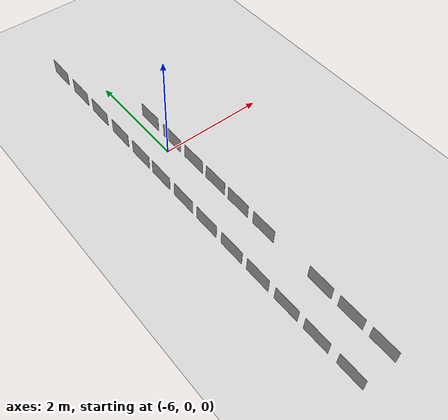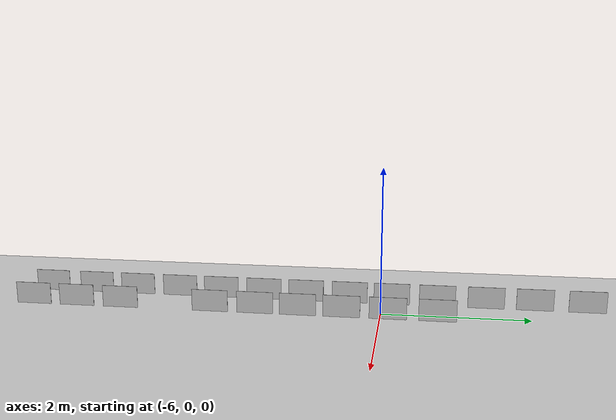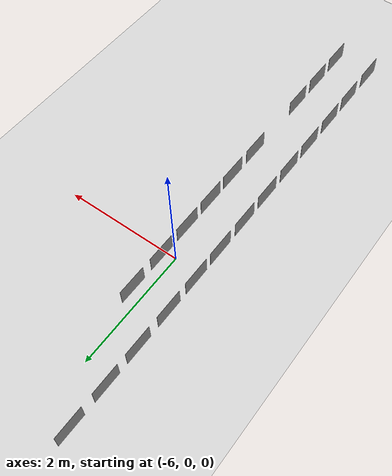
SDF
<sdf version="1.7">
 <world name="default">
  <model name="ground_plane">
   <static>1</static>
   <link name="link">
    <collision name="collision">
     <geometry><plane><normal>0 0 1</normal><size>100 100</size></plane></geometry>
     <surface>
      <contact><collide_bitmask>65535</collide_bitmask></contact>
      <friction><ode><mu>100</mu><mu2>50</mu2></ode></friction>
     </surface>
    </collision>
    <visual name="visual">
     <cast_shadows>0</cast_shadows>
     <geometry><plane><normal>0 0 1</normal><size>100 100</size></plane></geometry>
     <material>
      <script><uri>file://media/materials/scripts/gazebo.material</uri><name>Gazebo/Grey</name></script>
     </material>
    </visual>
   </link>
  </model>
  <model name="kongbufenzi_1">
   <link name="link_0">
    <inertial>
     <mass>1</mass>
     <inertia>
      <ixx>0.166667</ixx>
      <ixy>0</ixy>
      <ixz>0</ixz>
      <iyy>0.166667</iyy>
      <iyz>0</iyz>
      <izz>0.166667</izz>
     </inertia>
    </inertial>
    <visual name="visual">
     <geometry><box><size>0.005 0.5 0.3</size></box></geometry>
     <material>
      <lighting>1</lighting>
      <script><uri>file://media/materials/scripts/gazebo.material</uri><name>Gazebo/kongbufenzi_1</name></script>
      <shader type="pixel"><normal_map>__default__</normal_map></shader>
      <ambient>0.3 0.3 0.3 1</ambient>
      <diffuse>0.7 0.7 0.7 1</diffuse>
      <specular>0.01 0.01 0.01 1</specular>
      <emissive>0 0 0 1</emissive>
     </material>
    </visual>
    <collision name="collision">
     <geometry><box><size>0.005 0.5 0.3</size></box></geometry>
     <surface>
      <friction>
       <ode><mu>1</mu><mu2>1</mu2><fdir1>0 0 0</fdir1><slip1>0</slip1><slip2>0</slip2></ode>
       <torsional>
        <coefficient>1</coefficient>
        <patch_radius>0</patch_radius>
        <surface_radius>0</surface_radius>
        <use_patch_radius>1</use_patch_radius>
        <ode><slip>0</slip></ode>
       </torsional>
      </friction>
      <bounce><restitution_coefficient>0</restitution_coefficient><threshold>1e+06</threshold></bounce>
      <contact>
       <collide_without_contact>0</collide_without_contact>
       <collide_without_contact_bitmask>1</collide_without_contact_bitmask>
       <collide_bitmask>1</collide_bitmask>
       <ode>
        <soft_cfm>0</soft_cfm>
        <soft_erp>0.2</soft_erp>
        <kp>1e+13</kp>
        <kd>1</kd>
        <max_vel>0.01</max_vel>
        <min_depth>0</min_depth>
       </ode>
       <bullet>
        <split_impulse>1</split_impulse>
        <split_impulse_penetration_threshold>-0.01</split_impulse_penetration_threshold>
        <soft_cfm>0</soft_cfm>
        <soft_erp>0.2</soft_erp>
        <kp>1e+13</kp>
        <kd>1</kd>
       </bullet>
      </contact>
     </surface>
    </collision>
   </link>
   <static>0</static>
   <pose>-6.47635 2.79167 0.149994 6e-06 -0 -4e-06</pose>
  </model>
  <model name="kongbufenzi_2">
   <link name="link_0">
    <inertial>
     <mass>1</mass>
     <inertia>
      <ixx>0.166667</ixx>
      <ixy>0</ixy>
      <ixz>0</ixz>
      <iyy>0.166667</iyy>
      <iyz>0</iyz>
      <izz>0.166667</izz>
     </inertia>
    </inertial>
    <visual name="visual">
     <geometry><box><size>0.005 0.5 0.3</size></box></geometry>
     <material>
      <lighting>1</lighting>
      <script><uri>file://media/materials/scripts/gazebo.material</uri><name>Gazebo/kongbufenzi_2</name></script>
      <shader type="pixel"><normal_map>__default__</normal_map></shader>
      <ambient>0.3 0.3 0.3 1</ambient>
      <diffuse>0.7 0.7 0.7 1</diffuse>
      <specular>0.01 0.01 0.01 1</specular>
      <emissive>0 0 0 1</emissive>
     </material>
    </visual>
    <collision name="collision">
     <geometry><box><size>0.005 0.5 0.3</size></box></geometry>
     <surface>
      <friction>
       <ode><mu>1</mu><mu2>1</mu2><fdir1>0 0 0</fdir1><slip1>0</slip1><slip2>0</slip2></ode>
       <torsional>
        <coefficient>1</coefficient>
        <patch_radius>0</patch_radius>
        <surface_radius>0</surface_radius>
        <use_patch_radius>1</use_patch_radius>
        <ode><slip>0</slip></ode>
       </torsional>
      </friction>
      <bounce><restitution_coefficient>0</restitution_coefficient><threshold>1e+06</threshold></bounce>
      <contact>
       <collide_without_contact>0</collide_without_contact>
       <collide_without_contact_bitmask>1</collide_without_contact_bitmask>
       <collide_bitmask>1</collide_bitmask>
       <ode>
        <soft_cfm>0</soft_cfm>
        <soft_erp>0.2</soft_erp>
        <kp>1e+13</kp>
        <kd>1</kd>
        <max_vel>0.01</max_vel>
        <min_depth>0</min_depth>
       </ode>
       <bullet>
        <split_impulse>1</split_impulse>
        <split_impulse_penetration_threshold>-0.01</split_impulse_penetration_threshold>
        <soft_cfm>0</soft_cfm>
        <soft_erp>0.2</soft_erp>
        <kp>1e+13</kp>
        <kd>1</kd>
       </bullet>
      </contact>
     </surface>
    </collision>
   </link>
   <static>0</static>
   <pose>-6.47633 2.09063 0.149997 1.1e-05 -0 -6e-06</pose>
  </model>
  <model name="kongbufenzi_3">
   <link name="link_0">
    <inertial>
     <mass>1</mass>
     <inertia>
      <ixx>0.166667</ixx>
      <ixy>0</ixy>
      <ixz>0</ixz>
      <iyy>0.166667</iyy>
      <iyz>0</iyz>
      <izz>0.166667</izz>
     </inertia>
    </inertial>
    <visual name="visual">
     <geometry><box><size>0.005 0.5 0.3</size></box></geometry>
     <material>
      <lighting>1</lighting>
      <script><uri>file://media/materials/scripts/gazebo.material</uri><name>Gazebo/kongbufenzi_3</name></script>
      <shader type="pixel"><normal_map>__default__</normal_map></shader>
      <ambient>0.3 0.3 0.3 1</ambient>
      <diffuse>0.7 0.7 0.7 1</diffuse>
      <specular>0.01 0.01 0.01 1</specular>
      <emissive>0 0 0 1</emissive>
     </material>
    </visual>
    <collision name="collision">
     <geometry><box><size>0.005 0.5 0.3</size></box></geometry>
     <surface>
      <friction>
       <ode><mu>1</mu><mu2>1</mu2><fdir1>0 0 0</fdir1><slip1>0</slip1><slip2>0</slip2></ode>
       <torsional>
        <coefficient>1</coefficient>
        <patch_radius>0</patch_radius>
        <surface_radius>0</surface_radius>
        <use_patch_radius>1</use_patch_radius>
        <ode><slip>0</slip></ode>
       </torsional>
      </friction>
      <bounce><restitution_coefficient>0</restitution_coefficient><threshold>1e+06</threshold></bounce>
      <contact>
       <collide_without_contact>0</collide_without_contact>
       <collide_without_contact_bitmask>1</collide_without_contact_bitmask>
       <collide_bitmask>1</collide_bitmask>
       <ode>
        <soft_cfm>0</soft_cfm>
        <soft_erp>0.2</soft_erp>
        <kp>1e+13</kp>
        <kd>1</kd>
        <max_vel>0.01</max_vel>
        <min_depth>0</min_depth>
       </ode>
       <bullet>
        <split_impulse>1</split_impulse>
        <split_impulse_penetration_threshold>-0.01</split_impulse_penetration_threshold>
        <soft_cfm>0</soft_cfm>
        <soft_erp>0.2</soft_erp>
        <kp>1e+13</kp>
        <kd>1</kd>
       </bullet>
      </contact>
     </surface>
    </collision>
   </link>
   <static>0</static>
   <pose>-6.47637 1.43025 0.149997 -1.1e-05 -0 9e-06</pose>
  </model>
  <model name="jinggun_1">
   <link name="link_0">
    <inertial>
     <mass>1</mass>
     <inertia>
      <ixx>0.166667</ixx>
      <ixy>0</ixy>
      <ixz>0</ixz>
      <iyy>0.166667</iyy>
      <iyz>0</iyz>
      <izz>0.166667</izz>
     </inertia>
    </inertial>
    <visual name="visual">
     <geometry><box><size>0.005 0.5 0.3</size></box></geometry>
     <material>
      <lighting>1</lighting>
      <script><uri>file://media/materials/scripts/gazebo.material</uri><name>Gazebo/jinggun_1</name></script>
      <shader type="pixel"><normal_map>__default__</normal_map></shader>
      <ambient>0.3 0.3 0.3 1</ambient>
      <diffuse>0.7 0.7 0.7 1</diffuse>
      <specular>0.01 0.01 0.01 1</specular>
      <emissive>0 0 0 1</emissive>
     </material>
    </visual>
    <collision name="collision">
     <geometry><box><size>0.005 0.5 0.3</size></box></geometry>
     <surface>
      <friction>
       <ode><mu>1</mu><mu2>1</mu2><fdir1>0 0 0</fdir1><slip1>0</slip1><slip2>0</slip2></ode>
       <torsional>
        <coefficient>1</coefficient>
        <patch_radius>0</patch_radius>
        <surface_radius>0</surface_radius>
        <use_patch_radius>1</use_patch_radius>
        <ode><slip>0</slip></ode>
       </torsional>
      </friction>
      <bounce><restitution_coefficient>0</restitution_coefficient><threshold>1e+06</threshold></bounce>
      <contact>
       <collide_without_contact>0</collide_without_contact>
       <collide_without_contact_bitmask>1</collide_without_contact_bitmask>
       <collide_bitmask>1</collide_bitmask>
       <ode>
        <soft_cfm>0</soft_cfm>
        <soft_erp>0.2</soft_erp>
        <kp>1e+13</kp>
        <kd>1</kd>
        <max_vel>0.01</max_vel>
        <min_depth>0</min_depth>
       </ode>
       <bullet>
        <split_impulse>1</split_impulse>
        <split_impulse_penetration_threshold>-0.01</split_impulse_penetration_threshold>
        <soft_cfm>0</soft_cfm>
        <soft_erp>0.2</soft_erp>
        <kp>1e+13</kp>
        <kd>1</kd>
       </bullet>
      </contact>
     </surface>
    </collision>
   </link>
   <static>0</static>
   <pose>-6.47636 0.761972 0.149998 1e-05 -2e-06 0.000422</pose>
  </model>
  <model name="jinggun_2">
   <link name="link_0">
    <inertial>
     <mass>1</mass>
     <inertia>
      <ixx>0.166667</ixx>
      <ixy>0</ixy>
      <ixz>0</ixz>
      <iyy>0.166667</iyy>
      <iyz>0</iyz>
      <izz>0.166667</izz>
     </inertia>
    </inertial>
    <visual name="visual">
     <geometry><box><size>0.005 0.5 0.3</size></box></geometry>
     <material>
      <lighting>1</lighting>
      <script><uri>file://media/materials/scripts/gazebo.material</uri><name>Gazebo/jinggun_2</name></script>
      <shader type="pixel"><normal_map>__default__</normal_map></shader>
      <ambient>0.3 0.3 0.3 1</ambient>
      <diffuse>0.7 0.7 0.7 1</diffuse>
      <specular>0.01 0.01 0.01 1</specular>
      <emissive>0 0 0 1</emissive>
     </material>
    </visual>
    <collision name="collision">
     <geometry><box><size>0.005 0.5 0.3</size></box></geometry>
     <surface>
      <friction>
       <ode><mu>1</mu><mu2>1</mu2><fdir1>0 0 0</fdir1><slip1>0</slip1><slip2>0</slip2></ode>
       <torsional>
        <coefficient>1</coefficient>
        <patch_radius>0</patch_radius>
        <surface_radius>0</surface_radius>
        <use_patch_radius>1</use_patch_radius>
        <ode><slip>0</slip></ode>
       </torsional>
      </friction>
      <bounce><restitution_coefficient>0</restitution_coefficient><threshold>1e+06</threshold></bounce>
      <contact>
       <collide_without_contact>0</collide_without_contact>
       <collide_without_contact_bitmask>1</collide_without_contact_bitmask>
       <collide_bitmask>1</collide_bitmask>
       <ode>
        <soft_cfm>0</soft_cfm>
        <soft_erp>0.2</soft_erp>
        <kp>1e+13</kp>
        <kd>1</kd>
        <max_vel>0.01</max_vel>
        <min_depth>0</min_depth>
       </ode>
       <bullet>
        <split_impulse>1</split_impulse>
        <split_impulse_penetration_threshold>-0.01</split_impulse_penetration_threshold>
        <soft_cfm>0</soft_cfm>
        <soft_erp>0.2</soft_erp>
        <kp>1e+13</kp>
        <kd>1</kd>
       </bullet>
      </contact>
     </surface>
    </collision>
   </link>
   <static>0</static>
   <pose>-6.47635 0.127676 0.15 0 -1e-06 1e-06</pose>
  </model>
  <model name="jinggun_3">
   <link name="link_0">
    <inertial>
     <mass>1</mass>
     <inertia>
      <ixx>0.166667</ixx>
      <ixy>0</ixy>
      <ixz>0</ixz>
      <iyy>0.166667</iyy>
      <iyz>0</iyz>
      <izz>0.166667</izz>
     </inertia>
    </inertial>
    <visual name="visual">
     <geometry><box><size>0.005 0.5 0.3</size></box></geometry>
     <material>
      <lighting>1</lighting>
      <script><uri>file://media/materials/scripts/gazebo.material</uri><name>Gazebo/jinggun_3</name></script>
      <shader type="pixel"><normal_map>__default__</normal_map></shader>
      <ambient>0.3 0.3 0.3 1</ambient>
      <diffuse>0.7 0.7 0.7 1</diffuse>
      <specular>0.01 0.01 0.01 1</specular>
      <emissive>0 0 0 1</emissive>
     </material>
    </visual>
    <collision name="collision">
     <geometry><box><size>0.005 0.5 0.3</size></box></geometry>
     <surface>
      <friction>
       <ode><mu>1</mu><mu2>1</mu2><fdir1>0 0 0</fdir1><slip1>0</slip1><slip2>0</slip2></ode>
       <torsional>
        <coefficient>1</coefficient>
        <patch_radius>0</patch_radius>
        <surface_radius>0</surface_radius>
        <use_patch_radius>1</use_patch_radius>
        <ode><slip>0</slip></ode>
       </torsional>
      </friction>
      <bounce><restitution_coefficient>0</restitution_coefficient><threshold>1e+06</threshold></bounce>
      <contact>
       <collide_without_contact>0</collide_without_contact>
       <collide_without_contact_bitmask>1</collide_without_contact_bitmask>
       <collide_bitmask>1</collide_bitmask>
       <ode>
        <soft_cfm>0</soft_cfm>
        <soft_erp>0.2</soft_erp>
        <kp>1e+13</kp>
        <kd>1</kd>
        <max_vel>0.01</max_vel>
        <min_depth>0</min_depth>
       </ode>
       <bullet>
        <split_impulse>1</split_impulse>
        <split_impulse_penetration_threshold>-0.01</split_impulse_penetration_threshold>
        <soft_cfm>0</soft_cfm>
        <soft_erp>0.2</soft_erp>
        <kp>1e+13</kp>
        <kd>1</kd>
       </bullet>
      </contact>
     </surface>
    </collision>
   </link>
   <static>0</static>
   <pose>-6.47637 -0.46529 0.149997 1.1e-05 -0 -1.3e-05</pose>
  </model>
  <model name="jinggun_4">
   <link name="link_0">
    <inertial>
     <mass>1</mass>
     <inertia>
      <ixx>0.166667</ixx>
      <ixy>0</ixy>
      <ixz>0</ixz>
      <iyy>0.166667</iyy>
      <iyz>0</iyz>
      <izz>0.166667</izz>
     </inertia>
    </inertial>
    <visual name="visual">
     <geometry><box><size>0.005 0.5 0.3</size></box></geometry>
     <material>
      <lighting>1</lighting>
      <script><uri>file://media/materials/scripts/gazebo.material</uri><name>Gazebo/jinggun_4</name></script>
      <shader type="pixel"><normal_map>__default__</normal_map></shader>
      <ambient>0.3 0.3 0.3 1</ambient>
      <diffuse>0.7 0.7 0.7 1</diffuse>
      <specular>0.01 0.01 0.01 1</specular>
      <emissive>0 0 0 1</emissive>
     </material>
    </visual>
    <collision name="collision">
     <geometry><box><size>0.005 0.5 0.3</size></box></geometry>
     <surface>
      <friction>
       <ode><mu>1</mu><mu2>1</mu2><fdir1>0 0 0</fdir1><slip1>0</slip1><slip2>0</slip2></ode>
       <torsional>
        <coefficient>1</coefficient>
        <patch_radius>0</patch_radius>
        <surface_radius>0</surface_radius>
        <use_patch_radius>1</use_patch_radius>
        <ode><slip>0</slip></ode>
       </torsional>
      </friction>
      <bounce><restitution_coefficient>0</restitution_coefficient><threshold>1e+06</threshold></bounce>
      <contact>
       <collide_without_contact>0</collide_without_contact>
       <collide_without_contact_bitmask>1</collide_without_contact_bitmask>
       <collide_bitmask>1</collide_bitmask>
       <ode>
        <soft_cfm>0</soft_cfm>
        <soft_erp>0.2</soft_erp>
        <kp>1e+13</kp>
        <kd>1</kd>
        <max_vel>0.01</max_vel>
        <min_depth>0</min_depth>
       </ode>
       <bullet>
        <split_impulse>1</split_impulse>
        <split_impulse_penetration_threshold>-0.01</split_impulse_penetration_threshold>
        <soft_cfm>0</soft_cfm>
        <soft_erp>0.2</soft_erp>
        <kp>1e+13</kp>
        <kd>1</kd>
       </bullet>
      </contact>
     </surface>
    </collision>
   </link>
   <static>0</static>
   <pose>-6.47634 -1.0885 0.149997 1.1e-05 -0 -6.2e-05</pose>
  </model>
  <model name="jinggun_5">
   <link name="link_0">
    <inertial>
     <mass>1</mass>
     <inertia>
      <ixx>0.166667</ixx>
      <ixy>0</ixy>
      <ixz>0</ixz>
      <iyy>0.166667</iyy>
      <iyz>0</iyz>
      <izz>0.166667</izz>
     </inertia>
    </inertial>
    <visual name="visual">
     <geometry><box><size>0.005 0.5 0.3</size></box></geometry>
     <material>
      <lighting>1</lighting>
      <script><uri>file://media/materials/scripts/gazebo.material</uri><name>Gazebo/jinggun_5</name></script>
      <shader type="pixel"><normal_map>__default__</normal_map></shader>
      <ambient>0.3 0.3 0.3 1</ambient>
      <diffuse>0.7 0.7 0.7 1</diffuse>
      <specular>0.01 0.01 0.01 1</specular>
      <emissive>0 0 0 1</emissive>
     </material>
    </visual>
    <collision name="collision">
     <geometry><box><size>0.005 0.5 0.3</size></box></geometry>
     <surface>
      <friction>
       <ode><mu>1</mu><mu2>1</mu2><fdir1>0 0 0</fdir1><slip1>0</slip1><slip2>0</slip2></ode>
       <torsional>
        <coefficient>1</coefficient>
        <patch_radius>0</patch_radius>
        <surface_radius>0</surface_radius>
        <use_patch_radius>1</use_patch_radius>
        <ode><slip>0</slip></ode>
       </torsional>
      </friction>
      <bounce><restitution_coefficient>0</restitution_coefficient><threshold>1e+06</threshold></bounce>
      <contact>
       <collide_without_contact>0</collide_without_contact>
       <collide_without_contact_bitmask>1</collide_without_contact_bitmask>
       <collide_bitmask>1</collide_bitmask>
       <ode>
        <soft_cfm>0</soft_cfm>
        <soft_erp>0.2</soft_erp>
        <kp>1e+13</kp>
        <kd>1</kd>
        <max_vel>0.01</max_vel>
        <min_depth>0</min_depth>
       </ode>
       <bullet>
        <split_impulse>1</split_impulse>
        <split_impulse_penetration_threshold>-0.01</split_impulse_penetration_threshold>
        <soft_cfm>0</soft_cfm>
        <soft_erp>0.2</soft_erp>
        <kp>1e+13</kp>
        <kd>1</kd>
       </bullet>
      </contact>
     </surface>
    </collision>
   </link>
   <static>0</static>
   <pose>-6.47633 -1.6976 0.149997 1.1e-05 -0 -6e-06</pose>
  </model>
  <model name="jijiubao_1">
   <link name="link_0">
    <inertial>
     <mass>1</mass>
     <inertia>
      <ixx>0.166667</ixx>
      <ixy>0</ixy>
      <ixz>0</ixz>
      <iyy>0.166667</iyy>
      <iyz>0</iyz>
      <izz>0.166667</izz>
     </inertia>
    </inertial>
    <visual name="visual">
     <geometry><box><size>0.005 0.5 0.3</size></box></geometry>
     <material>
      <lighting>1</lighting>
      <script><uri>file://media/materials/scripts/gazebo.material</uri><name>Gazebo/jijiubao_1</name></script>
      <shader type="pixel"><normal_map>__default__</normal_map></shader>
      <ambient>0.3 0.3 0.3 1</ambient>
      <diffuse>0.7 0.7 0.7 1</diffuse>
      <specular>0.01 0.01 0.01 1</specular>
      <emissive>0 0 0 1</emissive>
     </material>
    </visual>
    <collision name="collision">
     <geometry><box><size>0.005 0.5 0.3</size></box></geometry>
     <surface>
      <friction>
       <ode><mu>1</mu><mu2>1</mu2><fdir1>0 0 0</fdir1><slip1>0</slip1><slip2>0</slip2></ode>
       <torsional>
        <coefficient>1</coefficient>
        <patch_radius>0</patch_radius>
        <surface_radius>0</surface_radius>
        <use_patch_radius>1</use_patch_radius>
        <ode><slip>0</slip></ode>
       </torsional>
      </friction>
      <bounce><restitution_coefficient>0</restitution_coefficient><threshold>1e+06</threshold></bounce>
      <contact>
       <collide_without_contact>0</collide_without_contact>
       <collide_without_contact_bitmask>1</collide_without_contact_bitmask>
       <collide_bitmask>1</collide_bitmask>
       <ode>
        <soft_cfm>0</soft_cfm>
        <soft_erp>0.2</soft_erp>
        <kp>1e+13</kp>
        <kd>1</kd>
        <max_vel>0.01</max_vel>
        <min_depth>0</min_depth>
       </ode>
       <bullet>
        <split_impulse>1</split_impulse>
        <split_impulse_penetration_threshold>-0.01</split_impulse_penetration_threshold>
        <soft_cfm>0</soft_cfm>
        <soft_erp>0.2</soft_erp>
        <kp>1e+13</kp>
        <kd>1</kd>
       </bullet>
      </contact>
     </surface>
    </collision>
   </link>
   <static>0</static>
   <pose>-6.47637 -2.32217 0.149997 -1.1e-05 -0 9e-06</pose>
  </model>
  <model name="jijiubao_2">
   <link name="link_0">
    <inertial>
     <mass>1</mass>
     <inertia>
      <ixx>0.166667</ixx>
      <ixy>0</ixy>
      <ixz>0</ixz>
      <iyy>0.166667</iyy>
      <iyz>0</iyz>
      <izz>0.166667</izz>
     </inertia>
    </inertial>
    <visual name="visual">
     <geometry><box><size>0.005 0.5 0.3</size></box></geometry>
     <material>
      <lighting>1</lighting>
      <script><uri>file://media/materials/scripts/gazebo.material</uri><name>Gazebo/jijiubao_2</name></script>
      <shader type="pixel"><normal_map>__default__</normal_map></shader>
      <ambient>0.3 0.3 0.3 1</ambient>
      <diffuse>0.7 0.7 0.7 1</diffuse>
      <specular>0.01 0.01 0.01 1</specular>
      <emissive>0 0 0 1</emissive>
     </material>
    </visual>
    <collision name="collision">
     <geometry><box><size>0.005 0.5 0.3</size></box></geometry>
     <surface>
      <friction>
       <ode><mu>1</mu><mu2>1</mu2><fdir1>0 0 0</fdir1><slip1>0</slip1><slip2>0</slip2></ode>
       <torsional>
        <coefficient>1</coefficient>
        <patch_radius>0</patch_radius>
        <surface_radius>0</surface_radius>
        <use_patch_radius>1</use_patch_radius>
        <ode><slip>0</slip></ode>
       </torsional>
      </friction>
      <bounce><restitution_coefficient>0</restitution_coefficient><threshold>1e+06</threshold></bounce>
      <contact>
       <collide_without_contact>0</collide_without_contact>
       <collide_without_contact_bitmask>1</collide_without_contact_bitmask>
       <collide_bitmask>1</collide_bitmask>
       <ode>
        <soft_cfm>0</soft_cfm>
        <soft_erp>0.2</soft_erp>
        <kp>1e+13</kp>
        <kd>1</kd>
        <max_vel>0.01</max_vel>
        <min_depth>0</min_depth>
       </ode>
       <bullet>
        <split_impulse>1</split_impulse>
        <split_impulse_penetration_threshold>-0.01</split_impulse_penetration_threshold>
        <soft_cfm>0</soft_cfm>
        <soft_erp>0.2</soft_erp>
        <kp>1e+13</kp>
        <kd>1</kd>
       </bullet>
      </contact>
     </surface>
    </collision>
   </link>
   <static>0</static>
   <pose>-6.47636 -2.93382 0.149998 1e-05 -2e-06 0.000422</pose>
  </model>
  <model name="jijiubao_3">
   <link name="link_0">
    <inertial>
     <mass>1</mass>
     <inertia>
      <ixx>0.166667</ixx>
      <ixy>0</ixy>
      <ixz>0</ixz>
      <iyy>0.166667</iyy>
      <iyz>0</iyz>
      <izz>0.166667</izz>
     </inertia>
    </inertial>
    <visual name="visual">
     <geometry><box><size>0.005 0.5 0.3</size></box></geometry>
     <material>
      <lighting>1</lighting>
      <script><uri>file://media/materials/scripts/gazebo.material</uri><name>Gazebo/jijiubao_3</name></script>
      <shader type="pixel"><normal_map>__default__</normal_map></shader>
      <ambient>0.3 0.3 0.3 1</ambient>
      <diffuse>0.7 0.7 0.7 1</diffuse>
      <specular>0.01 0.01 0.01 1</specular>
      <emissive>0 0 0 1</emissive>
     </material>
    </visual>
    <collision name="collision">
     <geometry><box><size>0.005 0.5 0.3</size></box></geometry>
     <surface>
      <friction>
       <ode><mu>1</mu><mu2>1</mu2><fdir1>0 0 0</fdir1><slip1>0</slip1><slip2>0</slip2></ode>
       <torsional>
        <coefficient>1</coefficient>
        <patch_radius>0</patch_radius>
        <surface_radius>0</surface_radius>
        <use_patch_radius>1</use_patch_radius>
        <ode><slip>0</slip></ode>
       </torsional>
      </friction>
      <bounce><restitution_coefficient>0</restitution_coefficient><threshold>1e+06</threshold></bounce>
      <contact>
       <collide_without_contact>0</collide_without_contact>
       <collide_without_contact_bitmask>1</collide_without_contact_bitmask>
       <collide_bitmask>1</collide_bitmask>
       <ode>
        <soft_cfm>0</soft_cfm>
        <soft_erp>0.2</soft_erp>
        <kp>1e+13</kp>
        <kd>1</kd>
        <max_vel>0.01</max_vel>
        <min_depth>0</min_depth>
       </ode>
       <bullet>
        <split_impulse>1</split_impulse>
        <split_impulse_penetration_threshold>-0.01</split_impulse_penetration_threshold>
        <soft_cfm>0</soft_cfm>
        <soft_erp>0.2</soft_erp>
        <kp>1e+13</kp>
        <kd>1</kd>
       </bullet>
      </contact>
     </surface>
    </collision>
   </link>
   <static>0</static>
   <pose>-6.47635 -3.56786 0.15 0 -1e-06 1e-06</pose>
  </model>
  <model name="jijiubao_5">
   <link name="link_0">
    <inertial>
     <mass>1</mass>
     <inertia>
      <ixx>0.166667</ixx>
      <ixy>0</ixy>
      <ixz>0</ixz>
      <iyy>0.166667</iyy>
      <iyz>0</iyz>
      <izz>0.166667</izz>
     </inertia>
    </inertial>
    <visual name="visual">
     <geometry><box><size>0.005 0.5 0.3</size></box></geometry>
     <material>
      <lighting>1</lighting>
      <script><uri>file://media/materials/scripts/gazebo.material</uri><name>Gazebo/jijiubao_5</name></script>
      <shader type="pixel"><normal_map>__default__</normal_map></shader>
      <ambient>0.3 0.3 0.3 1</ambient>
      <diffuse>0.7 0.7 0.7 1</diffuse>
      <specular>0.01 0.01 0.01 1</specular>
      <emissive>0 0 0 1</emissive>
     </material>
    </visual>
    <collision name="collision">
     <geometry><box><size>0.005 0.5 0.3</size></box></geometry>
     <surface>
      <friction>
       <ode><mu>1</mu><mu2>1</mu2><fdir1>0 0 0</fdir1><slip1>0</slip1><slip2>0</slip2></ode>
       <torsional>
        <coefficient>1</coefficient>
        <patch_radius>0</patch_radius>
        <surface_radius>0</surface_radius>
        <use_patch_radius>1</use_patch_radius>
        <ode><slip>0</slip></ode>
       </torsional>
      </friction>
      <bounce><restitution_coefficient>0</restitution_coefficient><threshold>1e+06</threshold></bounce>
      <contact>
       <collide_without_contact>0</collide_without_contact>
       <collide_without_contact_bitmask>1</collide_without_contact_bitmask>
       <collide_bitmask>1</collide_bitmask>
       <ode>
        <soft_cfm>0</soft_cfm>
        <soft_erp>0.2</soft_erp>
        <kp>1e+13</kp>
        <kd>1</kd>
        <max_vel>0.01</max_vel>
        <min_depth>0</min_depth>
       </ode>
       <bullet>
        <split_impulse>1</split_impulse>
        <split_impulse_penetration_threshold>-0.01</split_impulse_penetration_threshold>
        <soft_cfm>0</soft_cfm>
        <soft_erp>0.2</soft_erp>
        <kp>1e+13</kp>
        <kd>1</kd>
       </bullet>
      </contact>
     </surface>
    </collision>
   </link>
   <static>0</static>
   <pose>-6.47637 -4.19429 0.149997 1.1e-05 -0 -1.3e-05</pose>
  </model>
  <model name="fangdanyi_1">
   <link name="link_0">
    <inertial>
     <mass>1</mass>
     <inertia>
      <ixx>0.166667</ixx>
      <ixy>0</ixy>
      <ixz>0</ixz>
      <iyy>0.166667</iyy>
      <iyz>0</iyz>
      <izz>0.166667</izz>
     </inertia>
    </inertial>
    <visual name="visual">
     <geometry><box><size>0.005 0.5 0.3</size></box></geometry>
     <material>
      <lighting>1</lighting>
      <script><uri>file://media/materials/scripts/gazebo.material</uri><name>Gazebo/fangdanyi_1</name></script>
      <shader type="pixel"><normal_map>__default__</normal_map></shader>
      <ambient>0.3 0.3 0.3 1</ambient>
      <diffuse>0.7 0.7 0.7 1</diffuse>
      <specular>0.01 0.01 0.01 1</specular>
      <emissive>0 0 0 1</emissive>
     </material>
    </visual>
    <collision name="collision">
     <geometry><box><size>0.005 0.5 0.3</size></box></geometry>
     <surface>
      <friction>
       <ode><mu>1</mu><mu2>1</mu2><fdir1>0 0 0</fdir1><slip1>0</slip1><slip2>0</slip2></ode>
       <torsional>
        <coefficient>1</coefficient>
        <patch_radius>0</patch_radius>
        <surface_radius>0</surface_radius>
        <use_patch_radius>1</use_patch_radius>
        <ode><slip>0</slip></ode>
       </torsional>
      </friction>
      <bounce><restitution_coefficient>0</restitution_coefficient><threshold>1e+06</threshold></bounce>
      <contact>
       <collide_without_contact>0</collide_without_contact>
       <collide_without_contact_bitmask>1</collide_without_contact_bitmask>
       <collide_bitmask>1</collide_bitmask>
       <ode>
        <soft_cfm>0</soft_cfm>
        <soft_erp>0.2</soft_erp>
        <kp>1e+13</kp>
        <kd>1</kd>
        <max_vel>0.01</max_vel>
        <min_depth>0</min_depth>
       </ode>
       <bullet>
        <split_impulse>1</split_impulse>
        <split_impulse_penetration_threshold>-0.01</split_impulse_penetration_threshold>
        <soft_cfm>0</soft_cfm>
        <soft_erp>0.2</soft_erp>
        <kp>1e+13</kp>
        <kd>1</kd>
       </bullet>
      </contact>
     </surface>
    </collision>
   </link>
   <static>0</static>
   <pose>-5.82453 -4.24233 0.150001 -4e-06 -1e-06 7e-06</pose>
  </model>
  <model name="fangdanyi_2">
   <link name="link_0">
    <inertial>
     <mass>1</mass>
     <inertia>
      <ixx>0.166667</ixx>
      <ixy>0</ixy>
      <ixz>0</ixz>
      <iyy>0.166667</iyy>
      <iyz>0</iyz>
      <izz>0.166667</izz>
     </inertia>
    </inertial>
    <visual name="visual">
     <geometry><box><size>0.005 0.5 0.3</size></box></geometry>
     <material>
      <lighting>1</lighting>
      <script><uri>file://media/materials/scripts/gazebo.material</uri><name>Gazebo/fangdanyi_2</name></script>
      <shader type="pixel"><normal_map>__default__</normal_map></shader>
      <ambient>0.3 0.3 0.3 1</ambient>
      <diffuse>0.7 0.7 0.7 1</diffuse>
      <specular>0.01 0.01 0.01 1</specular>
      <emissive>0 0 0 1</emissive>
     </material>
    </visual>
    <collision name="collision">
     <geometry><box><size>0.005 0.5 0.3</size></box></geometry>
     <surface>
      <friction>
       <ode><mu>1</mu><mu2>1</mu2><fdir1>0 0 0</fdir1><slip1>0</slip1><slip2>0</slip2></ode>
       <torsional>
        <coefficient>1</coefficient>
        <patch_radius>0</patch_radius>
        <surface_radius>0</surface_radius>
        <use_patch_radius>1</use_patch_radius>
        <ode><slip>0</slip></ode>
       </torsional>
      </friction>
      <bounce><restitution_coefficient>0</restitution_coefficient><threshold>1e+06</threshold></bounce>
      <contact>
       <collide_without_contact>0</collide_without_contact>
       <collide_without_contact_bitmask>1</collide_without_contact_bitmask>
       <collide_bitmask>1</collide_bitmask>
       <ode>
        <soft_cfm>0</soft_cfm>
        <soft_erp>0.2</soft_erp>
        <kp>1e+13</kp>
        <kd>1</kd>
        <max_vel>0.01</max_vel>
        <min_depth>0</min_depth>
       </ode>
       <bullet>
        <split_impulse>1</split_impulse>
        <split_impulse_penetration_threshold>-0.01</split_impulse_penetration_threshold>
        <soft_cfm>0</soft_cfm>
        <soft_erp>0.2</soft_erp>
        <kp>1e+13</kp>
        <kd>1</kd>
       </bullet>
      </contact>
     </surface>
    </collision>
   </link>
   <static>0</static>
   <pose>-5.8245 -3.60712 0.149997 1.1e-05 -0 -6.4e-05</pose>
  </model>
  <model name="fangdanyi_4">
   <link name="link_0">
    <inertial>
     <mass>1</mass>
     <inertia>
      <ixx>0.166667</ixx>
      <ixy>0</ixy>
      <ixz>0</ixz>
      <iyy>0.166667</iyy>
      <iyz>0</iyz>
      <izz>0.166667</izz>
     </inertia>
    </inertial>
    <visual name="visual">
     <geometry><box><size>0.005 0.5 0.3</size></box></geometry>
     <material>
      <lighting>1</lighting>
      <script><uri>file://media/materials/scripts/gazebo.material</uri><name>Gazebo/fangdanyi_4</name></script>
      <shader type="pixel"><normal_map>__default__</normal_map></shader>
      <ambient>0.3 0.3 0.3 1</ambient>
      <diffuse>0.7 0.7 0.7 1</diffuse>
      <specular>0.01 0.01 0.01 1</specular>
      <emissive>0 0 0 1</emissive>
     </material>
    </visual>
    <collision name="collision">
     <geometry><box><size>0.005 0.5 0.3</size></box></geometry>
     <surface>
      <friction>
       <ode><mu>1</mu><mu2>1</mu2><fdir1>0 0 0</fdir1><slip1>0</slip1><slip2>0</slip2></ode>
       <torsional>
        <coefficient>1</coefficient>
        <patch_radius>0</patch_radius>
        <surface_radius>0</surface_radius>
        <use_patch_radius>1</use_patch_radius>
        <ode><slip>0</slip></ode>
       </torsional>
      </friction>
      <bounce><restitution_coefficient>0</restitution_coefficient><threshold>1e+06</threshold></bounce>
      <contact>
       <collide_without_contact>0</collide_without_contact>
       <collide_without_contact_bitmask>1</collide_without_contact_bitmask>
       <collide_bitmask>1</collide_bitmask>
       <ode>
        <soft_cfm>0</soft_cfm>
        <soft_erp>0.2</soft_erp>
        <kp>1e+13</kp>
        <kd>1</kd>
        <max_vel>0.01</max_vel>
        <min_depth>0</min_depth>
       </ode>
       <bullet>
        <split_impulse>1</split_impulse>
        <split_impulse_penetration_threshold>-0.01</split_impulse_penetration_threshold>
        <soft_cfm>0</soft_cfm>
        <soft_erp>0.2</soft_erp>
        <kp>1e+13</kp>
        <kd>1</kd>
       </bullet>
      </contact>
     </surface>
    </collision>
   </link>
   <static>0</static>
   <pose>-5.82451 -2.32931 0.149997 -1.1e-05 -0 8e-05</pose>
  </model>
  <model name="fangdanyi_5">
   <link name="link_0">
    <inertial>
     <mass>1</mass>
     <inertia>
      <ixx>0.166667</ixx>
      <ixy>0</ixy>
      <ixz>0</ixz>
      <iyy>0.166667</iyy>
      <iyz>0</iyz>
      <izz>0.166667</izz>
     </inertia>
    </inertial>
    <visual name="visual">
     <geometry><box><size>0.005 0.5 0.3</size></box></geometry>
     <material>
      <lighting>1</lighting>
      <script><uri>file://media/materials/scripts/gazebo.material</uri><name>Gazebo/fangdanyi_5</name></script>
      <shader type="pixel"><normal_map>__default__</normal_map></shader>
      <ambient>0.3 0.3 0.3 1</ambient>
      <diffuse>0.7 0.7 0.7 1</diffuse>
      <specular>0.01 0.01 0.01 1</specular>
      <emissive>0 0 0 1</emissive>
     </material>
    </visual>
    <collision name="collision">
     <geometry><box><size>0.005 0.5 0.3</size></box></geometry>
     <surface>
      <friction>
       <ode><mu>1</mu><mu2>1</mu2><fdir1>0 0 0</fdir1><slip1>0</slip1><slip2>0</slip2></ode>
       <torsional>
        <coefficient>1</coefficient>
        <patch_radius>0</patch_radius>
        <surface_radius>0</surface_radius>
        <use_patch_radius>1</use_patch_radius>
        <ode><slip>0</slip></ode>
       </torsional>
      </friction>
      <bounce><restitution_coefficient>0</restitution_coefficient><threshold>1e+06</threshold></bounce>
      <contact>
       <collide_without_contact>0</collide_without_contact>
       <collide_without_contact_bitmask>1</collide_without_contact_bitmask>
       <collide_bitmask>1</collide_bitmask>
       <ode>
        <soft_cfm>0</soft_cfm>
        <soft_erp>0.2</soft_erp>
        <kp>1e+13</kp>
        <kd>1</kd>
        <max_vel>0.01</max_vel>
        <min_depth>0</min_depth>
       </ode>
       <bullet>
        <split_impulse>1</split_impulse>
        <split_impulse_penetration_threshold>-0.01</split_impulse_penetration_threshold>
        <soft_cfm>0</soft_cfm>
        <soft_erp>0.2</soft_erp>
        <kp>1e+13</kp>
        <kd>1</kd>
       </bullet>
      </contact>
     </surface>
    </collision>
   </link>
   <static>0</static>
   <pose>-5.82453 -4.87076 0.149997 1.1e-05 -0 -1.1e-05</pose>
  </model>
  <model name="jijiubao_4">
   <link name="link_0">
    <inertial>
     <mass>1</mass>
     <inertia>
      <ixx>0.166667</ixx>
      <ixy>0</ixy>
      <ixz>0</ixz>
      <iyy>0.166667</iyy>
      <iyz>0</iyz>
      <izz>0.166667</izz>
     </inertia>
    </inertial>
    <visual name="visual">
     <geometry><box><size>0.005 0.5 0.3</size></box></geometry>
     <material>
      <lighting>1</lighting>
      <script><uri>file://media/materials/scripts/gazebo.material</uri><name>Gazebo/jijiubao_4</name></script>
      <shader type="pixel"><normal_map>__default__</normal_map></shader>
      <ambient>0.3 0.3 0.3 1</ambient>
      <diffuse>0.7 0.7 0.7 1</diffuse>
      <specular>0.01 0.01 0.01 1</specular>
      <emissive>0 0 0 1</emissive>
     </material>
    </visual>
    <collision name="collision">
     <geometry><box><size>0.005 0.5 0.3</size></box></geometry>
     <surface>
      <friction>
       <ode><mu>1</mu><mu2>1</mu2><fdir1>0 0 0</fdir1><slip1>0</slip1><slip2>0</slip2></ode>
       <torsional>
        <coefficient>1</coefficient>
        <patch_radius>0</patch_radius>
        <surface_radius>0</surface_radius>
        <use_patch_radius>1</use_patch_radius>
        <ode><slip>0</slip></ode>
       </torsional>
      </friction>
      <bounce><restitution_coefficient>0</restitution_coefficient><threshold>1e+06</threshold></bounce>
      <contact>
       <collide_without_contact>0</collide_without_contact>
       <collide_without_contact_bitmask>1</collide_without_contact_bitmask>
       <collide_bitmask>1</collide_bitmask>
       <ode>
        <soft_cfm>0</soft_cfm>
        <soft_erp>0.2</soft_erp>
        <kp>1e+13</kp>
        <kd>1</kd>
        <max_vel>0.01</max_vel>
        <min_depth>0</min_depth>
       </ode>
       <bullet>
        <split_impulse>1</split_impulse>
        <split_impulse_penetration_threshold>-0.01</split_impulse_penetration_threshold>
        <soft_cfm>0</soft_cfm>
        <soft_erp>0.2</soft_erp>
        <kp>1e+13</kp>
        <kd>1</kd>
       </bullet>
      </contact>
     </surface>
    </collision>
   </link>
   <static>0</static>
   <pose>-6.47632 -4.86456 0.149997 -1.1e-05 -0 6e-06</pose>
  </model>
  <model name="cuileiwasi_1">
   <link name="link_0">
    <inertial>
     <mass>1</mass>
     <inertia>
      <ixx>0.166667</ixx>
      <ixy>0</ixy>
      <ixz>0</ixz>
      <iyy>0.166667</iyy>
      <iyz>0</iyz>
      <izz>0.166667</izz>
     </inertia>
    </inertial>
    <visual name="visual">
     <geometry><box><size>0.005 0.5 0.3</size></box></geometry>
     <material>
      <lighting>1</lighting>
      <script><uri>file://media/materials/scripts/gazebo.material</uri><name>Gazebo/cuileiwasi_1</name></script>
      <shader type="pixel"><normal_map>__default__</normal_map></shader>
      <ambient>0.3 0.3 0.3 1</ambient>
      <diffuse>0.7 0.7 0.7 1</diffuse>
      <specular>0.01 0.01 0.01 1</specular>
      <emissive>0 0 0 1</emissive>
     </material>
    </visual>
    <collision name="collision">
     <geometry><box><size>0.005 0.5 0.3</size></box></geometry>
     <surface>
      <friction>
       <ode><mu>1</mu><mu2>1</mu2><fdir1>0 0 0</fdir1><slip1>0</slip1><slip2>0</slip2></ode>
       <torsional>
        <coefficient>1</coefficient>
        <patch_radius>0</patch_radius>
        <surface_radius>0</surface_radius>
        <use_patch_radius>1</use_patch_radius>
        <ode><slip>0</slip></ode>
       </torsional>
      </friction>
      <bounce><restitution_coefficient>0</restitution_coefficient><threshold>1e+06</threshold></bounce>
      <contact>
       <collide_without_contact>0</collide_without_contact>
       <collide_without_contact_bitmask>1</collide_without_contact_bitmask>
       <collide_bitmask>1</collide_bitmask>
       <ode>
        <soft_cfm>0</soft_cfm>
        <soft_erp>0.2</soft_erp>
        <kp>1e+13</kp>
        <kd>1</kd>
        <max_vel>0.01</max_vel>
        <min_depth>0</min_depth>
       </ode>
       <bullet>
        <split_impulse>1</split_impulse>
        <split_impulse_penetration_threshold>-0.01</split_impulse_penetration_threshold>
        <soft_cfm>0</soft_cfm>
        <soft_erp>0.2</soft_erp>
        <kp>1e+13</kp>
        <kd>1</kd>
       </bullet>
      </contact>
     </surface>
    </collision>
   </link>
   <static>0</static>
   <pose>-5.82451 -1.70094 0.149997 -1.1e-05 -0 5.7e-05</pose>
  </model>
  <model name="cuileiwasi_2">
   <link name="link_0">
    <inertial>
     <mass>1</mass>
     <inertia>
      <ixx>0.166667</ixx>
      <ixy>0</ixy>
      <ixz>0</ixz>
      <iyy>0.166667</iyy>
      <iyz>0</iyz>
      <izz>0.166667</izz>
     </inertia>
    </inertial>
    <visual name="visual">
     <geometry><box><size>0.005 0.5 0.3</size></box></geometry>
     <material>
      <lighting>1</lighting>
      <script><uri>file://media/materials/scripts/gazebo.material</uri><name>Gazebo/cuileiwasi_2</name></script>
      <shader type="pixel"><normal_map>__default__</normal_map></shader>
      <ambient>0.3 0.3 0.3 1</ambient>
      <diffuse>0.7 0.7 0.7 1</diffuse>
      <specular>0.01 0.01 0.01 1</specular>
      <emissive>0 0 0 1</emissive>
     </material>
    </visual>
    <collision name="collision">
     <geometry><box><size>0.005 0.5 0.3</size></box></geometry>
     <surface>
      <friction>
       <ode><mu>1</mu><mu2>1</mu2><fdir1>0 0 0</fdir1><slip1>0</slip1><slip2>0</slip2></ode>
       <torsional>
        <coefficient>1</coefficient>
        <patch_radius>0</patch_radius>
        <surface_radius>0</surface_radius>
        <use_patch_radius>1</use_patch_radius>
        <ode><slip>0</slip></ode>
       </torsional>
      </friction>
      <bounce><restitution_coefficient>0</restitution_coefficient><threshold>1e+06</threshold></bounce>
      <contact>
       <collide_without_contact>0</collide_without_contact>
       <collide_without_contact_bitmask>1</collide_without_contact_bitmask>
       <collide_bitmask>1</collide_bitmask>
       <ode>
        <soft_cfm>0</soft_cfm>
        <soft_erp>0.2</soft_erp>
        <kp>1e+13</kp>
        <kd>1</kd>
        <max_vel>0.01</max_vel>
        <min_depth>0</min_depth>
       </ode>
       <bullet>
        <split_impulse>1</split_impulse>
        <split_impulse_penetration_threshold>-0.01</split_impulse_penetration_threshold>
        <soft_cfm>0</soft_cfm>
        <soft_erp>0.2</soft_erp>
        <kp>1e+13</kp>
        <kd>1</kd>
       </bullet>
      </contact>
     </surface>
    </collision>
   </link>
   <static>0</static>
   <pose>-5.82454 -1.11214 0.15 0 -0 -6e-06</pose>
  </model>
  <model name="cuileiwasi_3">
   <link name="link_0">
    <inertial>
     <mass>1</mass>
     <inertia>
      <ixx>0.166667</ixx>
      <ixy>0</ixy>
      <ixz>0</ixz>
      <iyy>0.166667</iyy>
      <iyz>0</iyz>
      <izz>0.166667</izz>
     </inertia>
    </inertial>
    <visual name="visual">
     <geometry><box><size>0.005 0.5 0.3</size></box></geometry>
     <material>
      <lighting>1</lighting>
      <script><uri>file://media/materials/scripts/gazebo.material</uri><name>Gazebo/cuileiwasi_3</name></script>
      <shader type="pixel"><normal_map>__default__</normal_map></shader>
      <ambient>0.3 0.3 0.3 1</ambient>
      <diffuse>0.7 0.7 0.7 1</diffuse>
      <specular>0.01 0.01 0.01 1</specular>
      <emissive>0 0 0 1</emissive>
     </material>
    </visual>
    <collision name="collision">
     <geometry><box><size>0.005 0.5 0.3</size></box></geometry>
     <surface>
      <friction>
       <ode><mu>1</mu><mu2>1</mu2><fdir1>0 0 0</fdir1><slip1>0</slip1><slip2>0</slip2></ode>
       <torsional>
        <coefficient>1</coefficient>
        <patch_radius>0</patch_radius>
        <surface_radius>0</surface_radius>
        <use_patch_radius>1</use_patch_radius>
        <ode><slip>0</slip></ode>
       </torsional>
      </friction>
      <bounce><restitution_coefficient>0</restitution_coefficient><threshold>1e+06</threshold></bounce>
      <contact>
       <collide_without_contact>0</collide_without_contact>
       <collide_without_contact_bitmask>1</collide_without_contact_bitmask>
       <collide_bitmask>1</collide_bitmask>
       <ode>
        <soft_cfm>0</soft_cfm>
        <soft_erp>0.2</soft_erp>
        <kp>1e+13</kp>
        <kd>1</kd>
        <max_vel>0.01</max_vel>
        <min_depth>0</min_depth>
       </ode>
       <bullet>
        <split_impulse>1</split_impulse>
        <split_impulse_penetration_threshold>-0.01</split_impulse_penetration_threshold>
        <soft_cfm>0</soft_cfm>
        <soft_erp>0.2</soft_erp>
        <kp>1e+13</kp>
        <kd>1</kd>
       </bullet>
      </contact>
     </surface>
    </collision>
   </link>
   <static>0</static>
   <pose>-5.82452 -0.515507 0.149994 6e-06 -0 -3.3e-05</pose>
  </model>
  <model name="cuileiwasi_4">
   <link name="link_0">
    <inertial>
     <mass>1</mass>
     <inertia>
      <ixx>0.166667</ixx>
      <ixy>0</ixy>
      <ixz>0</ixz>
      <iyy>0.166667</iyy>
      <iyz>0</iyz>
      <izz>0.166667</izz>
     </inertia>
    </inertial>
    <visual name="visual">
     <geometry><box><size>0.005 0.5 0.3</size></box></geometry>
     <material>
      <lighting>1</lighting>
      <script><uri>file://media/materials/scripts/gazebo.material</uri><name>Gazebo/cuileiwasi_4</name></script>
      <shader type="pixel"><normal_map>__default__</normal_map></shader>
      <ambient>0.3 0.3 0.3 1</ambient>
      <diffuse>0.7 0.7 0.7 1</diffuse>
      <specular>0.01 0.01 0.01 1</specular>
      <emissive>0 0 0 1</emissive>
     </material>
    </visual>
    <collision name="collision">
     <geometry><box><size>0.005 0.5 0.3</size></box></geometry>
     <surface>
      <friction>
       <ode><mu>1</mu><mu2>1</mu2><fdir1>0 0 0</fdir1><slip1>0</slip1><slip2>0</slip2></ode>
       <torsional>
        <coefficient>1</coefficient>
        <patch_radius>0</patch_radius>
        <surface_radius>0</surface_radius>
        <use_patch_radius>1</use_patch_radius>
        <ode><slip>0</slip></ode>
       </torsional>
      </friction>
      <bounce><restitution_coefficient>0</restitution_coefficient><threshold>1e+06</threshold></bounce>
      <contact>
       <collide_without_contact>0</collide_without_contact>
       <collide_without_contact_bitmask>1</collide_without_contact_bitmask>
       <collide_bitmask>1</collide_bitmask>
       <ode>
        <soft_cfm>0</soft_cfm>
        <soft_erp>0.2</soft_erp>
        <kp>1e+13</kp>
        <kd>1</kd>
        <max_vel>0.01</max_vel>
        <min_depth>0</min_depth>
       </ode>
       <bullet>
        <split_impulse>1</split_impulse>
        <split_impulse_penetration_threshold>-0.01</split_impulse_penetration_threshold>
        <soft_cfm>0</soft_cfm>
        <soft_erp>0.2</soft_erp>
        <kp>1e+13</kp>
        <kd>1</kd>
       </bullet>
      </contact>
     </surface>
    </collision>
   </link>
   <static>0</static>
   <pose>-5.82455 0.105652 0.15 0 1e-06 1e-06</pose>
  </model>
  <model name="cuileiwasi_5">
   <link name="link_0">
    <inertial>
     <mass>1</mass>
     <inertia>
      <ixx>0.166667</ixx>
      <ixy>0</ixy>
      <ixz>0</ixz>
      <iyy>0.166667</iyy>
      <iyz>0</iyz>
      <izz>0.166667</izz>
     </inertia>
    </inertial>
    <visual name="visual">
     <geometry><box><size>0.005 0.5 0.3</size></box></geometry>
     <material>
      <lighting>1</lighting>
      <script><uri>file://media/materials/scripts/gazebo.material</uri><name>Gazebo/cuileiwasi_5</name></script>
      <shader type="pixel"><normal_map>__default__</normal_map></shader>
      <ambient>0.3 0.3 0.3 1</ambient>
      <diffuse>0.7 0.7 0.7 1</diffuse>
      <specular>0.01 0.01 0.01 1</specular>
      <emissive>0 0 0 1</emissive>
     </material>
    </visual>
    <collision name="collision">
     <geometry><box><size>0.005 0.5 0.3</size></box></geometry>
     <surface>
      <friction>
       <ode><mu>1</mu><mu2>1</mu2><fdir1>0 0 0</fdir1><slip1>0</slip1><slip2>0</slip2></ode>
       <torsional>
        <coefficient>1</coefficient>
        <patch_radius>0</patch_radius>
        <surface_radius>0</surface_radius>
        <use_patch_radius>1</use_patch_radius>
        <ode><slip>0</slip></ode>
       </torsional>
      </friction>
      <bounce><restitution_coefficient>0</restitution_coefficient><threshold>1e+06</threshold></bounce>
      <contact>
       <collide_without_contact>0</collide_without_contact>
       <collide_without_contact_bitmask>1</collide_without_contact_bitmask>
       <collide_bitmask>1</collide_bitmask>
       <ode>
        <soft_cfm>0</soft_cfm>
        <soft_erp>0.2</soft_erp>
        <kp>1e+13</kp>
        <kd>1</kd>
        <max_vel>0.01</max_vel>
        <min_depth>0</min_depth>
       </ode>
       <bullet>
        <split_impulse>1</split_impulse>
        <split_impulse_penetration_threshold>-0.01</split_impulse_penetration_threshold>
        <soft_cfm>0</soft_cfm>
        <soft_erp>0.2</soft_erp>
        <kp>1e+13</kp>
        <kd>1</kd>
       </bullet>
      </contact>
     </surface>
    </collision>
   </link>
   <static>0</static>
   <pose>-5.82454 0.764408 0.150001 -4e-06 -1e-06 -8.4e-05</pose>
  </model>
 </world>
</sdf>
